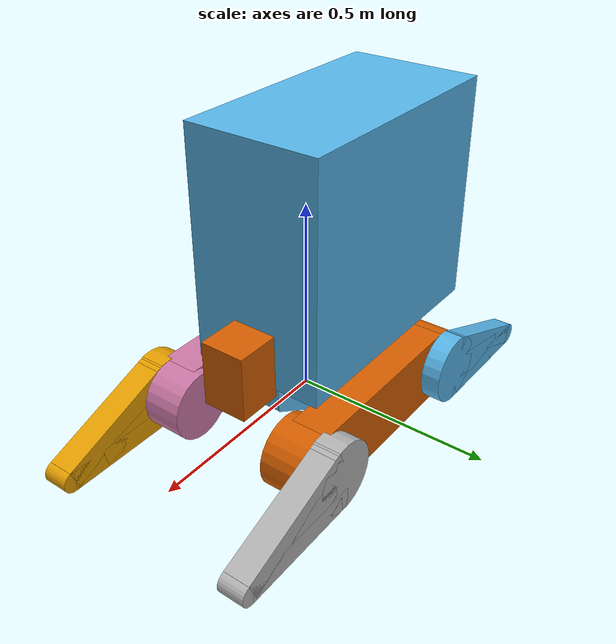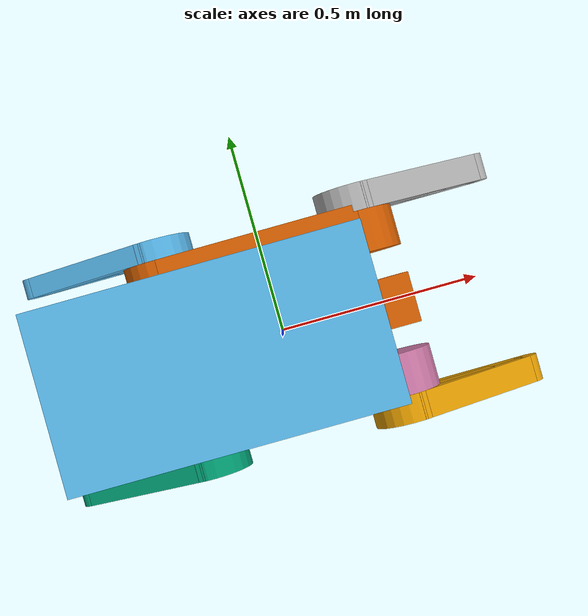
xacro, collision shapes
<?xml version="1.0"?>
<robot xmlns:xacro="http://www.ros.org/wiki/xacro" name="NIFTi">

    <!-- ARGUMENTS FOR DETERMINING REMOVABLE ROBOT PARTS PRESENCE AND POSITION ON THE BODY. -->
    <xacro:arg name="has_top_box" default="1" />
        <!-- Distance from robot's back to top box' front panel. Default is the front-most position. -->
        <xacro:arg name="top_box_j_x" default="0.4977" />

    <xacro:arg name="has_omnicam" default="1" />

    <xacro:arg name="has_flippers" default="1" />

    <xacro:arg name="simplified_collision" default="2" />

    <xacro:arg name="big_collision_box_on_top" default="1" />
    <xacro:arg name="flipper_inflation_ratio" default="1.0" />
    <!-- Since laser does a really bad job in filtering the flippers out, we need to extend them a bit inwards. The outer outline of the flippers should still remain realistic. -->
    <xacro:arg name="flipper_inward_enlargement" default="0.017" />

    <xacro:arg name="has_jaco_arm" default="0" />
	<xacro:arg name="jaco_uses_wpi" default="0" />
	<xacro:arg name="jaco_uses_kinova_ros" default="0" />
	<xacro:arg name="jaco_arm_is_v1" default="1" />
        <!-- Origin is the bottom-most (z) and central (x-y) part of the cylinder with connectors. -->
        <xacro:arg name="jaco_x_offset" default="0.449" />
        <xacro:arg name="jaco_y_offset" default="0.1765" />

        <xacro:arg name="holds_stick" default="0" />
            <xacro:arg name="stick_length" default="0.2" />
	    <xacro:arg name="stick_visible" default="1" />

    <xacro:arg name="has_flipper_touch_sensors" default="0" />

    <xacro:arg name="has_axis_camera" default="0" />
        <xacro:arg name="axis_x_offset" default="0.059" />
	<xacro:arg name="axis_y_offset" default="0.08" />

    <xacro:arg name="has_realsense" default="0" />
        <xacro:arg name="realsense_tilt" default="0.5" />
        <xacro:arg name="realsense_shift_y" default="0.05" />
        <xacro:arg name="realsense_upside_down" default="0" />

    <!-- Parameters for the Xtion-Thermo cam sensor mounted on a ptu. -->
    <xacro:arg name="has_ptuxthermo" default="0" />
    <xacro:arg name="ptuxthermo_x_offset" default="0.449" />
    <xacro:arg name="ptuxthermo_y_offset" default="0.1765" />

    <!-- ARGUMENTS FOR GENERATING FIXED ROBOT MODEL -->
    <xacro:arg name="robot_fixed" default="0" />
    <xacro:arg name="left_track_angle" default="0.0" />
    <xacro:arg name="right_track_angle" default="0.0" />
    <xacro:arg name="front_left_flipper_angle" default="0.0" />
    <xacro:arg name="front_right_flipper_angle" default="0.0" />
    <xacro:arg name="rear_left_flipper_angle" default="0.0" />
    <xacro:arg name="rear_right_flipper_angle" default="0.0" />
    <xacro:arg name="laser_angle" default="0.0" />

    <!-- ARGUMENTS FOR SAFE EXPLORATION -->
    <xacro:arg name="base_link_cog_offset" default="0.0" />

    <!-- MEASURED CONSTANTS -->

    <xacro:property name="body_scale" value="1.0" />
    <xacro:property name="body_mass" value="6.746" />

    <xacro:property name="battery_scale" value="1.0" />
    <xacro:property name="battery_mass" value="3.18" />

    <xacro:property name="top_box_scale" value="1.0" />
    <xacro:property name="top_box_mass" value="0.24" />

    <xacro:property name="antenna_scale" value="1.0" />
    <xacro:property name="antenna_mass" value="0.56" />

    <xacro:property name="track_scale" value="1.0" />
    <xacro:property name="track_mass" value="6.06" />
    <!-- Since laser does a really bad job in filtering the front track parts out, we need to extend them a bit inwards. The outer outline of the tracks should still remain realistic. -->
    <xacro:property name="track_inward_enlargement" value="0.015" />

    <xacro:property name="flipper_scale" value="1.0" />
    <xacro:property name="flipper_mass" value="0.75" />

    <xacro:property name="laser_scale" value="1.0" />
    <xacro:property name="laser_mass" value="1.1" />

    <xacro:property name="omnicam_scale" value="1.0" />
    <xacro:property name="omnicam_mass" value="2.414" />

    <!-- SPECIAL LINKS -->

    <!-- This is a virtual link that specifies the origin to which parts attachable to the top of the robot should be related. -->
    <link name="rear_right_box" />
    <joint name="rear_right_box_j" type="fixed">
        <parent link="base_link"/>
        <child link="rear_right_box"/>
        <origin rpy="0 0 0" xyz="-0.379 -0.1265 0.185"/>
    </joint>

    <!-- INCLUDES -->
    <!-- The included models should have collision elements specified for all physical links to be filtered out by laser filtering. -->

    <!-- Include Jaco arm if enabled. -->
    <xacro:if value="$(arg has_jaco_arm)">
	<xacro:if value="$(arg jaco_uses_wpi)">
        	<xacro:include filename="$(find jaco_description)/urdf/jaco_arm.urdf.xacro" />
        	<xacro:jaco_arm parent="jaco_base_helper" xyz="0 0 0" rpy="0 0 0" />
	</xacro:if>
	<xacro:if value="$(arg jaco_uses_kinova_ros)"><!-- For Kinova-ROS -->
		<xacro:property name="robot_root" value="jaco_base_helper" />
		<xacro:if value="$(arg jaco_arm_is_v1)">
			<xacro:include filename="$(find kinova_description)/urdf/j2n6s300.xacro"/>
			<xacro:j2n6s300 base_parent="jaco_base_helper" simplified_collision="$(arg simplified_collision)"/>
		</xacro:if>
		<xacro:unless value="$(arg jaco_arm_is_v1)">
		    	<xacro:include filename="$(find kinova_description)/urdf/j2n6s300.xacro"/>
		    	<xacro:j2n6s300 base_parent="jaco_base_helper" simplified_collision="$(arg simplified_collision)"/>
		</xacro:unless>
	</xacro:if>
	<xacro:unless value="$(arg jaco_uses_kinova_ros)">
		<xacro:unless value="$(arg jaco_uses_wpi)">
		        <xacro:include filename="$(find jaco_model)/urdf/jaco_arm.xacro" />
	        	<xacro:jaco_arm parent="jaco_base_helper"/>
		</xacro:unless>
	</xacro:unless>
        <link name="jaco_base_helper" /> <!-- this link only exists to allow for an offset between jaco_link_base and rear_right_box -->
        <joint name="jaco_base_to_robot_base_link" type="fixed">
             <parent link="rear_right_box" />
             <child link="jaco_base_helper" />
             <origin xyz="$(arg jaco_x_offset) $(arg jaco_y_offset) 0.015" rpy="0 0 1.5707963267" />
        </joint>
	<xacro:if value="$(arg holds_stick)">
		<xacro:property name="stick_length" value="$(arg stick_length)" />
		<link name="arm_stick">
			<xacro:if value="$(arg stick_visible)">
			<visual>
				<origin xyz="0 0 ${stick_length/2.0}" rpy="0 0 0" />
				<geometry>
					<cylinder length="$(arg stick_length)" radius="0.01" />
				</geometry>
			</visual>
			</xacro:if>
			<collision>
				<origin xyz="0 0 ${stick_length/2.0}" rpy="0 0 0" />
				<geometry>
					<cylinder length="$(arg stick_length)" radius="0.04" />
				</geometry>
			</collision>

		</link>
		<joint name="arm_stick_joint" type="fixed">

			<xacro:unless value="$(arg jaco_uses_wpi)">
				<parent link="jaco_end_effector" />
			</xacro:unless>

			<xacro:if value="$(arg jaco_uses_wpi)">
				<parent link="jaco_link_hand" />
			</xacro:if>
			<child link="arm_stick" />
			<origin xyz="0 0 0" rpy="0 0 0" />
		</joint>
		<link name="arm_stick_holder">
			<xacro:if value="$(arg stick_visible)">
			<visual>
				<geometry>
					<sphere radius="0.08" />
				</geometry>
			</visual>
			</xacro:if>
			<collision>
				<geometry>
					<sphere radius="0.25" />
				</geometry>
			</collision>

		</link>
		<joint name="arm_stick_holder_joint" type="fixed">
			<xacro:unless value="$(arg jaco_uses_wpi)">
				<parent link="jaco_end_effector" />
			</xacro:unless>

			<xacro:if value="$(arg jaco_uses_wpi)">
				<parent link="jaco_link_hand" />
			</xacro:if>

			<child link="arm_stick_holder" />
			<origin xyz="0 0 0" rpy="0 0 0" />
		</joint>
	</xacro:if>
    </xacro:if>

    <xacro:if value="$(arg has_flipper_touch_sensors)">
        <xacro:include filename="$(find flipper_touch_driver)/urdf/flipper_touch_sensors.xacro" />
    </xacro:if>

    <!-- Include Axis camera if enabled -->
    <xacro:if value="$(arg has_axis_camera)">
        <xacro:include filename="$(find axis_camera_tradr)/urdf/axis_camera_with_holder.xacro" />
        <joint name="rear_right_box_to_axis_holder" type="fixed">
            <parent link="rear_right_box" />
            <child link="axis_tradr_holder" />
            <origin xyz="$(arg axis_x_offset) $(arg axis_y_offset) 0" rpy="0 0 -1.5708" />
	</joint>
    </xacro:if>

    <!-- Include PTU Xtion-Thermo Sensor if enabled -->
    <xacro:if value="$(arg has_ptuxthermo)">
        <xacro:include filename="$(find flir_ptu)/urdf/ptu_xthermo.urdf.xacro" />
        <xacro:ptu_xthermo/>
        <joint name="rear_right_box_to_ptu_holder_base" type="fixed">
            <parent link="rear_right_box" />
            <child link="ptu_holder_base_link" />
            <origin xyz="$(arg ptuxthermo_x_offset) $(arg ptuxthermo_y_offset) 0" rpy="0 0 0" />
        </joint>
    </xacro:if>

    <!-- Include Realsense if enabled -->
    <xacro:if value="$(arg has_realsense)">
        <xacro:include filename="$(find realsense_media)/urdf/realsense_r200_with_holder.xacro" />
	<xacro:realsense_r200_with_holder camera_name="camera" tilt="$(arg realsense_tilt)" sensor_shift_y="$(arg realsense_shift_y)" upside_down="$(arg realsense_upside_down)" />
        <joint name="realsense_holder_part1_j" type="fixed">
            <parent link="omnicam"/>
    	    <child link="realsense_holder_part1"/>
 	    <origin xyz="0.05 0.04 0.075" rpy="0 0 0.628318530"/>
        </joint>
    </xacro:if>

    <!-- MACRO SPECIFICATIONS -->

    <xacro:macro name="inertia_meshlab" params="ixx ixy ixz iyy iyz izz scale mass">
        <inertia
            ixx="${ixx*scale*scale}" ixy="${ixy*scale*scale}" ixz="${ixz*scale*scale}"
            iyy="${iyy*scale*scale}" iyz="${iyz*scale*scale}"
            izz="${izz*scale*scale}"/>
    </xacro:macro>

    <xacro:macro name="default_inertial">
        <inertial>
            <origin xyz="0 0 0" rpy="0 0 0"/>
            <mass value="1e-5" />
            <inertia ixx="1e-3" ixy="1e-6" ixz="1e-6"
                iyy="1e-3" iyz="1e-6"
                izz="1e-3" />
        </inertial>
    </xacro:macro>

    <xacro:macro name="fixed_joint" params="name parent child xyz rpy">
        <joint name="${name}" type="fixed">
            <parent link="${parent}"/>
            <child link="${child}"/>
            <origin xyz="${xyz}" rpy="${rpy}"/>
        </joint>
    </xacro:macro>

    <xacro:macro name="empty_link" params="name">
        <link name="${name}">
            <visual>
                <origin xyz="0 0 0" rpy="0 0 0" />
                <geometry>
                    <box size="0.05 0.05 0.05"/>
                </geometry>
                <material name="invisible_color">
                    <color rgba="1 0 0 0.5"/>
                </material>
            </visual>
            <xacro:default_inertial />
        </link>
    </xacro:macro>

    <!-- NIFTI ROBOT LINKS AND JOINTS SPECIFICATION -->

    <link name="base_link">
        <visual>
            <origin xyz="0 0 0" rpy="0 0 0" />
            <geometry>
                <mesh scale="${body_scale} ${body_scale} ${body_scale}"
                    filename="package://nifti_robot_description/meshes/body.dae"/>
            </geometry>
        </visual>
        <xacro:if value="${$(arg simplified_collision)==0}">
            <collision>
                <origin xyz="0 0 0" rpy="0 0 0" />
                <geometry>
                    <mesh scale="${body_scale} ${body_scale} ${body_scale}"
                        filename="package://nifti_robot_description/meshes/body.dae"/>
                </geometry>
            </collision>
        </xacro:if>
        <xacro:if value="${$(arg simplified_collision)==1}">
            <collision>
                <origin xyz="0 0 0" rpy="0 0 0" />
                <geometry>
                    <mesh scale="${body_scale} ${body_scale} ${body_scale}"
                        filename="package://nifti_robot_description/meshes/collide/body.dae"/>
                </geometry>
            </collision>
        </xacro:if>
        <xacro:if value="${$(arg simplified_collision)==2}">
            <collision>
              <origin rpy="0 0 0" xyz="-0.1220 0 0.118"/>
              <geometry>
                <box size="0.50017 0.24093 0.1390" />
              </geometry>
            </collision>
            <collision>
              <origin rpy="0 0 0" xyz="0.157 0 0.118"/>
              <geometry>
                <box size="0.056 0.12093 0.1390" />
              </geometry>
            </collision>
            <collision>
              <origin rpy="0 0 0.785398" xyz="0.144 -0.076 0.118"/>
              <geometry>
                <box size="0.083 0.040 0.1390" />
              </geometry>
            </collision>
            <collision>
              <origin rpy="0 0 -0.785398" xyz="0.144 0.076 0.118"/>
              <geometry>
                <box size="0.083 0.040 0.1390" />
              </geometry>
            </collision>
            <collision>
              <origin rpy="0 0 0" xyz="0 0.135 0.09"/>
              <geometry>
                <box size="0.055 0.040 0.08" />
              </geometry>
            </collision>
            <collision>
              <origin rpy="0 0 0" xyz="0 0.155 0.013"/>
              <geometry>
                <box size="0.055 0.020 0.075" />
              </geometry>
            </collision>
            <collision>
              <origin rpy="0 0 0" xyz="0 -0.135 0.09"/>
              <geometry>
                <box size="0.055 0.040 0.08" />
              </geometry>
            </collision>
            <collision>
              <origin rpy="0 0 0" xyz="0 -0.155 0.013"/>
              <geometry>
                <box size="0.055 0.020 0.075" />
              </geometry>
            </collision>
        </xacro:if>
	<xacro:if value="$(arg big_collision_box_on_top)">
            <collision>
              <origin rpy="0 0 0" xyz="-0.13 0 0.418"/>
              <geometry>
                <box size="0.65 0.35 0.6" />
              </geometry>
	    </collision>
	</xacro:if>
	<inertial>
	    <xacro:property name="base_link_cog_offset" value="$(arg base_link_cog_offset)" />
            <origin xyz="${-0.034+base_link_cog_offset} 0 0.142" rpy="0 0 0"/>
            <mass value="${body_mass}"/>
            <xacro:inertia_meshlab
                ixx="6.9904e-003" ixy="1.2271e-004" ixz="-4.2725e-005"
                iyy="2.1290e-002" iyz="-1.0522e-004"
                izz="2.5519e-002"
                scale="${body_scale}" mass="${body_mass}" />
        </inertial>
    </link>

    <link name="battery">
        <visual>
            <origin xyz="0 0 0" rpy="0 0 0" />
            <geometry>
                <mesh scale="${battery_scale} ${battery_scale} ${battery_scale}"
                    filename="package://nifti_robot_description/meshes/battery.dae"/>
            </geometry>
        </visual>
        <xacro:if value="${$(arg simplified_collision)==0}">
            <collision>
                <origin xyz="0 0 0" rpy="0 0 0" />
                <geometry>
                    <mesh scale="${battery_scale} ${battery_scale} ${battery_scale}"
                        filename="package://nifti_robot_description/meshes/battery.dae"/>
                </geometry>
            </collision>
        </xacro:if>
        <xacro:if value="${$(arg simplified_collision)==1}">
            <collision>
                <origin xyz="0 0 0" rpy="0 0 0" />
                <geometry>
                    <mesh scale="${battery_scale} ${battery_scale} ${battery_scale}"
                        filename="package://nifti_robot_description/meshes/collide/battery.dae"/>
                </geometry>
            </collision>
        </xacro:if>
        <xacro:if value="${$(arg simplified_collision)==2}">
            <collision>
              <origin rpy="0 0 0" xyz="0 0 0.0410"/>
              <geometry>
                <box size="0.1450 0.1350 0.0820" />
              </geometry>
            </collision>
        </xacro:if>
        <inertial>
            <origin xyz="0 0 0.041" rpy="0 0 0"/>
            <mass value="${battery_mass}"/>
            <xacro:inertia_meshlab
                ixx="0.0020793" ixy="0" ixz="0"
                iyy="0.0023127" iyz="0"
                izz="0.0032712"
                scale="${battery_scale}" mass="${battery_mass}" />
        </inertial>
    </link>
    <xacro:fixed_joint name="battery_j" parent="base_link" child="battery" xyz="-0.2836 -0.0221 0.0722" rpy="0 0 0" />

    <xacro:if value="$(arg has_top_box)">
        <link name="top_box">
            <visual>
                <origin xyz="0 0 0" rpy="0 0 0" />
                <geometry>
                    <mesh scale="${top_box_scale} ${top_box_scale} ${top_box_scale}"
                        filename="package://nifti_robot_description/meshes/top_box.dae"/>
                </geometry>
            </visual>
            <xacro:if value="${$(arg simplified_collision)==0}">
                <collision>
                    <origin xyz="0 0 0" rpy="0 0 0" />
                    <geometry>
                        <mesh scale="${top_box_scale} ${top_box_scale} ${top_box_scale}"
                            filename="package://nifti_robot_description/meshes/top_box.dae"/>
                    </geometry>
                </collision>
            </xacro:if>
            <xacro:if value="${$(arg simplified_collision)==1}">
                <collision>
                    <origin xyz="0 0 0" rpy="0 0 0" />
                    <geometry>
                        <mesh scale="${top_box_scale} ${top_box_scale} ${top_box_scale}"
                            filename="package://nifti_robot_description/meshes/collide/top_box.dae"/>
                    </geometry>
                </collision>
            </xacro:if>
            <xacro:if value="${$(arg simplified_collision)==2}">
                <collision>
                  <origin rpy="0 0 0" xyz="-0.0290 0 0.0315"/>
                  <geometry>
                    <box size="0.2000 0.1330 0.06252" />
                  </geometry>
                </collision>
                <collision>
                  <origin rpy="0 0 0" xyz="-0.09824 0.04127 0.0690"/>
                  <geometry>
                    <box size="0.0440 0.0440 0.01303" />
                  </geometry>
                </collision>
                <collision>
                  <origin rpy="0 0 0" xyz="-0.07383 -0.04222 0.07996"/>
                  <geometry>
                    <box size="0.03732 0.03523 0.03489" />
                  </geometry>
                </collision>
            </xacro:if>
            <inertial>
                <origin xyz="0 0 0.041" rpy="0 0 0"/>
                <mass value="${top_box_mass}"/>
                <xacro:inertia_meshlab
                    ixx="0.0026136" ixy="0" ixz="0"
                    iyy="0.0049426" iyz="0"
                    izz="0.0070334"
                    scale="${top_box_scale}" mass="${top_box_mass}" />
            </inertial>
        </link>
        <joint name="top_box_j" type="fixed">
            <parent link="rear_right_box"/>
            <child link="top_box"/>
            <xacro:property name="top_box_j_x" value="$(arg top_box_j_x)" />
            <!-- Origin of top box is 0.071 m from the front side. And top_box_j_x is distance from robot's back to top box' front. -->
            <origin xyz="${top_box_j_x-0.071} 0.0708 0.0" rpy="0 0 0"/>
        </joint>
    </xacro:if>
    <link name="antenna">
        <visual>
            <origin xyz="0 0 0" rpy="0 0 0" />
            <geometry>
                <mesh scale="${antenna_scale} ${antenna_scale} ${antenna_scale}"
                    filename="package://nifti_robot_description/meshes/antenna.dae"/>
            </geometry>
        </visual>
        <xacro:if value="${$(arg simplified_collision)==0}">
            <collision>
                <origin xyz="0 0 0" rpy="0 0 0" />
                <geometry>
                    <mesh scale="${antenna_scale} ${antenna_scale} ${antenna_scale}"
                        filename="package://nifti_robot_description/meshes/antenna.dae"/>
                </geometry>
            </collision>
        </xacro:if>
        <xacro:if value="${$(arg simplified_collision)==1}">
            <collision>
                <origin xyz="0 0 0" rpy="0 0 0" />
                <geometry>
                    <mesh scale="${antenna_scale} ${antenna_scale} ${antenna_scale}"
                        filename="package://nifti_robot_description/meshes/collide/antenna.dae"/>
                </geometry>
            </collision>
        </xacro:if>
        <xacro:if value="${$(arg simplified_collision)==2}">
            <collision>
              <origin rpy="0 1.5707963267 0" xyz="-0.01864 0 0"/>
              <geometry>
                <cylinder length="0.03718" radius="0.008" />
              </geometry>
            </collision>
            <collision>
              <origin rpy="0 0 0" xyz="-0.030 0 0.19053"/>
              <geometry>
                <cylinder length="0.38107" radius="0.008" />
              </geometry>
            </collision>
        </xacro:if>
        <inertial>
            <origin xyz="-0.022 0.0203 0.02917" rpy="0 0 0"/>
            <mass value="${antenna_mass}"/>
            <xacro:inertia_meshlab
                ixx="4.8780e-003" ixy="-6.2341e-007" ixz="-7.4538e-007"
                iyy="9.0164e-004" iyz="-1.4394e-004"
                izz="4.2946e-003"
                scale="${antenna_scale}" mass="${antenna_mass}" />
        </inertial>
    </link>
    <xacro:fixed_joint name="antenna_j" parent="base_link" child="antenna" xyz="-0.3720 0.0789 0.1551" rpy="0 0 0" />

    <xacro:macro name="track" params="prefix reflect">
        <link name="${prefix}_track">
            <visual>
                <origin xyz="0 0 -0.0705" rpy="1.5707963267 0 ${reflect*1.5707963267}" />
                <geometry>
                    <mesh scale="${track_scale} ${track_scale} ${track_scale}"
                        filename="package://nifti_robot_description/meshes/bogie.dae"/>
                </geometry>
            </visual>
            <xacro:if value="${$(arg simplified_collision)==0}">
                <collision>
                    <origin xyz="0 0 -0.0705" rpy="1.5707963267 0 ${reflect*1.5707963267}" />
                    <geometry>
                        <mesh scale="${track_scale} ${track_scale} ${track_scale}"
                            filename="package://nifti_robot_description/meshes/bogie.dae"/>
                    </geometry>
                </collision>
            </xacro:if>
            <xacro:if value="${$(arg simplified_collision)==1}">
                <collision>
                    <origin xyz="0 0 -0.0705" rpy="1.5707963267 0 ${reflect*1.5707963267}" />
                    <geometry>
                        <mesh scale="${track_scale} ${track_scale} ${track_scale}"
                            filename="package://nifti_robot_description/meshes/collide/bogie.dae"/>
                    </geometry>
                </collision>
            </xacro:if>
            <xacro:if value="${$(arg simplified_collision)==2}">
                <collision>
                    <origin xyz="0 0 0.01855" rpy="1.5707963267 0 1.5707963267" />
                    <geometry>
                        <box size="0.09728 0.18094 0.50000"/>
                    </geometry>
                </collision>
                <collision>
                  <origin rpy="1.5707963267 0 0" xyz="0.25 ${-reflect*track_inward_enlargement} 0.01855"/>
                  <geometry>
                    <!-- enlarged because of laser filtering problems -->
                    <cylinder radius="0.09047" length="${0.09728+track_inward_enlargement}"/>
                  </geometry>
                </collision>
                <collision>
                  <origin rpy="1.5707963267 0 0" xyz="-0.25 0 0.01855"/>
                  <geometry>
                    <cylinder radius="0.09047" length="0.09728"/>
                  </geometry>
                </collision>
            </xacro:if>
            <inertial>
                <origin xyz="0 0 0.0141" rpy="0 0 0"/>
                <mass value="${track_mass}"/>
                <xacro:inertia_meshlab
                    ixx="0.002731" ixy="0" ixz="0"
                    iyy="0.032554" iyz="0.000015"
                    izz="0.031391"
                    scale="${track_scale}" mass="${track_mass}" />
            </inertial>
        </link>
        <joint name="${prefix}_track_j" type="revolute">
            <parent link="base_link"/>
            <child link="${prefix}_track"/>
            <axis xyz="0 1 0"/>

            <xacro:if value="${(reflect+1)/2}">
                <xacro:track_joint_properties track_fixed="$(arg robot_fixed)" track_angle="$(arg left_track_angle)" />
            </xacro:if>
            <xacro:unless value="${(reflect+1)/2}">
                <xacro:track_joint_properties track_fixed="$(arg robot_fixed)" track_angle="$(arg right_track_angle)" />
            </xacro:unless>
        </joint>
    </xacro:macro>

    <xacro:macro name="track_joint_properties" params="track_fixed track_angle">
        <origin xyz="0 ${reflect*0.1985} 0" rpy="0 ${track_angle} 0" />

        <xacro:unless value="${track_fixed}">
            <limit lower="0" upper="0" effort="0" velocity="4" />
        </xacro:unless>
        <xacro:if value="${track_fixed}">
            <limit lower="0" upper="0" effort="0" velocity="4" />
        </xacro:if>
    </xacro:macro>

    <xacro:track prefix="left" reflect="1" />
    <xacro:track prefix="right" reflect="-1" />

    <xacro:macro name="flipper" params="prefix1 prefix2 reflect_x reflect_y joint_pitch do_inward_enlargement">
        <link name="${prefix1}_${prefix2}_flipper">
            <visual>
                <origin xyz="0 0 0" rpy="3.32575 0 ${reflect_y*1.5707963267}" />
                <geometry>
                    <mesh scale="${flipper_scale} ${flipper_scale} ${flipper_scale}"
                        filename="package://nifti_robot_description/meshes/flipper.dae"/>
                </geometry>
            </visual>
            <xacro:if value="${$(arg simplified_collision)==0}">
                <collision name="${prefix1}_${prefix2}_flipper_collision">
                    <origin xyz="0 0 0" rpy="3.3 0 ${reflect_y*1.5707963267}" />
                    <geometry name="${prefix1}_${prefix2}_flipper_collision_geometry">
                        <mesh scale="${flipper_scale} ${flipper_scale} ${flipper_scale}"
                            filename="package://nifti_robot_description/meshes/flipper.dae"/>
                    </geometry>
                </collision>
            </xacro:if>
            <xacro:if value="${$(arg simplified_collision)==1}">
                <collision name="${prefix1}_${prefix2}_flipper_collision">
                    <origin xyz="0 0 0" rpy="3.3 0 ${reflect_y*1.5707963267}" />
                    <geometry name="${prefix1}_${prefix2}_flipper_collision_geometry">
                        <mesh scale="${flipper_scale} ${flipper_scale} ${flipper_scale}"
                            filename="package://nifti_robot_description/meshes/collide/flipper.dae"/>
                    </geometry>
                </collision>
            </xacro:if>
            <xacro:if value="${$(arg simplified_collision)==2}">
                <collision>
                  <origin rpy="1.5707963267 0 0" xyz="0 ${-reflect_y*$(arg flipper_inward_enlargement)*do_inward_enlargement/2.0} 0"/>
                  <geometry>
                    <cylinder length="${0.04981+$(arg flipper_inward_enlargement)*do_inward_enlargement}" radius="0.09047" />
                  </geometry>
                </collision>
                <collision>
                    <origin rpy="1.5707963267 0 0" xyz="${reflect_y*0.33} ${-reflect_y*$(arg flipper_inward_enlargement)*do_inward_enlargement/2.0} 0.0"/>
                  <geometry>
                    <cylinder length="${0.04981+$(arg flipper_inward_enlargement)*do_inward_enlargement}" radius="${0.029 + 0.029*($(arg flipper_inflation_ratio)-1)*do_inward_enlargement}" />
                  </geometry>
                </collision>
                <collision>
                    <origin rpy="0 0.184162095 ${(1-reflect_y)*1.5707963267}" xyz="${reflect_y*0.165} ${-reflect_y*$(arg flipper_inward_enlargement)*do_inward_enlargement/2.0} 0.0325"/>
                  <geometry>
                    <box size="0.33 ${0.04981+$(arg flipper_inward_enlargement)*do_inward_enlargement} ${0.055 + 0.055*($(arg flipper_inflation_ratio)-1)*do_inward_enlargement}" />
                  </geometry>
                </collision>
                <collision>
                    <origin rpy="0 -0.184162095 ${(1-reflect_y)*1.5707963267}" xyz="${reflect_y*0.165} ${-reflect_y*$(arg flipper_inward_enlargement)*do_inward_enlargement/2.0} -0.0325"/>
                  <geometry>
                    <box size="0.33 ${0.04981+$(arg flipper_inward_enlargement)*do_inward_enlargement} ${0.055 + 0.055*($(arg flipper_inflation_ratio)-1)*do_inward_enlargement}" />
                  </geometry>
                </collision>
                <collision>
                    <origin rpy="0 -0.02 ${(1-reflect_y)*1.5707963267}" xyz="${reflect_y*0.136} ${-reflect_y*$(arg flipper_inward_enlargement)*do_inward_enlargement/2.0} 0.004"/>
                  <geometry>
                    <box size="0.20 ${0.04981+$(arg flipper_inward_enlargement)*do_inward_enlargement} 0.07" />
                  </geometry>
                </collision>
            </xacro:if>
            <inertial>
                <origin xyz="${reflect_y*0.08} 0 0.0" rpy="0 0 0"/>
                <mass value="${flipper_mass}"/>
                <xacro:inertia_meshlab
                    ixx="1.7491e-003" ixy="2.8512e-007" ixz="1.8277e-003"
                    iyy="1.2277e-002" iyz="-3.6288e-007"
                    izz="1.0941e-002"
                    scale="${flipper_scale}" mass="${flipper_mass}" />
            </inertial>
            <sensor name="${prefix1}_${prefix2}_flipper_contact" type="contact">
                <contact>
                    <collision>${prefix1}_${prefix2}_flipper_collision</collision>
                    <collision>${prefix1}_${prefix2}_flipper_collision_large_wheel</collision>
                    <collision>${prefix1}_${prefix2}_flipper_collision_small_wheel</collision>
                    <collision>${prefix1}_${prefix2}_flipper_collision_top_bar</collision>
                    <collision>${prefix1}_${prefix2}_flipper_collision_bottom_bar</collision>
                    <collision>${prefix1}_${prefix2}_flipper_collision_middle_bar</collision>
                </contact>
            </sensor>
        </link>
        <xacro:if value="${(reflect_x+1)/2}">
            <xacro:if value="${(reflect_y+1)/2}">
                <xacro:flipper_joint flipper_fixed="$(arg robot_fixed)" flipper_angle="$(arg front_left_flipper_angle)" />
            </xacro:if>
            <xacro:unless value="${(reflect_y+1)/2}">
                <xacro:flipper_joint flipper_fixed="$(arg robot_fixed)" flipper_angle="$(arg front_right_flipper_angle)" />
            </xacro:unless>
        </xacro:if>
        <xacro:unless value="${(reflect_x+1)/2}">
            <xacro:if value="${(reflect_y+1)/2}">
                <xacro:flipper_joint flipper_fixed="$(arg robot_fixed)" flipper_angle="$(arg rear_left_flipper_angle)" />
            </xacro:if>
            <xacro:unless value="${(reflect_y+1)/2}">
                <xacro:flipper_joint flipper_fixed="$(arg robot_fixed)" flipper_angle="$(arg rear_right_flipper_angle)" />
            </xacro:unless>
        </xacro:unless>
    </xacro:macro>

    <xacro:macro name="flipper_joint" params="flipper_fixed flipper_angle">
        <xacro:if value="${flipper_fixed}">
            <joint name="${prefix1}_${prefix2}_flipper_j" type="revolute">
                <xacro:flipper_joint_inner flipper_fixed="${flipper_fixed}" flipper_angle="${flipper_angle}" />
            </joint>
        </xacro:if>
        <xacro:unless value="${flipper_fixed}">
            <joint name="${prefix1}_${prefix2}_flipper_j" type="continuous">
                <xacro:flipper_joint_inner flipper_fixed="${flipper_fixed}" flipper_angle="${flipper_angle}" />
            </joint>
        </xacro:unless>
    </xacro:macro>

    <xacro:macro name="flipper_joint_inner" params="flipper_fixed flipper_angle">
        <parent link="${prefix2}_track"/>
        <child link="${prefix1}_${prefix2}_flipper"/>
        <axis xyz="0 1 0"/>
        <origin xyz="${reflect_x*0.25} ${reflect_y*0.0735} 0.0195" rpy="0 ${joint_pitch+flipper_angle} 0"/>

        <xacro:if value="${flipper_fixed}">
            <limit lower="0" upper="0" effort="0" velocity="4" />
        </xacro:if>
    </xacro:macro>

    <xacro:if value="$(arg has_flippers)">
        <xacro:flipper prefix1="front" prefix2="left" reflect_x="1" reflect_y="1" joint_pitch="0.1937" do_inward_enlargement="1" />
        <xacro:flipper prefix1="front" prefix2="right" reflect_x="1" reflect_y="-1" joint_pitch="-2.9479" do_inward_enlargement="1" />
        <xacro:flipper prefix1="rear" prefix2="left" reflect_x="-1" reflect_y="1" joint_pitch="2.9479" do_inward_enlargement="0" />
        <xacro:flipper prefix1="rear" prefix2="right" reflect_x="-1" reflect_y="-1" joint_pitch="-0.1937" do_inward_enlargement="0" />

        <link name="front_left_flipper_end_point"/>
            <joint name="front_left_flipper_end_point_j" type="fixed">
            <parent link="front_left_flipper"/>
            <child link="front_left_flipper_end_point"/>
            <origin xyz="0.3476 0 0" rpy="0 0.1937 0"/>
        </joint>

        <link name="front_right_flipper_end_point"/>
        <joint name="front_right_flipper_end_point_j" type="fixed">
            <parent link="front_right_flipper"/>
            <child link="front_right_flipper_end_point"/>
            <origin xyz="0.3476 0 0" rpy="0 0.1937 0"/>
        </joint>
    </xacro:if>

    <link name="laser">
        <visual>
            <origin xyz="0 0 0" rpy="1.5707963267 0 -1.5707963267" />
            <geometry>
                <mesh scale="${laser_scale} ${laser_scale} ${laser_scale}"
                    filename="package://nifti_robot_description/meshes/laser.dae"/>
            </geometry>
        </visual>
        <xacro:if value="${$(arg simplified_collision)==0}">
            <collision>
                <origin xyz="0 0 0" rpy="1.5707963267 0 -1.5707963267" />
                <geometry>
                    <mesh scale="${laser_scale} ${laser_scale} ${laser_scale}"
                        filename="package://nifti_robot_description/meshes/laser.dae"/>
                </geometry>
            </collision>
        </xacro:if>
        <xacro:if value="${$(arg simplified_collision)==1}">
            <collision>
                <origin xyz="0 0 0" rpy="1.5707963267 0 -1.5707963267" />
                <geometry>
                    <mesh scale="${laser_scale} ${laser_scale} ${laser_scale}"
                        filename="package://nifti_robot_description/meshes/collide/laser.dae"/>
                </geometry>
            </collision>
        </xacro:if>
        <xacro:if value="${$(arg simplified_collision)==2}">
            <collision>
              <origin rpy="1.5707963267 0 -1.5707963267" xyz="0 0 -0.04"/>
              <geometry>
                <box size="0.1159 0.16826 0.1159"/>
              </geometry>
            </collision>
        </xacro:if>
        <inertial>
            <origin xyz="0 0 -0.07" rpy="0 0 0"/>
            <mass value="${laser_mass}"/>
            <xacro:inertia_meshlab
                ixx="3.1194e-003" ixy="-2.2210e-006" ixz="-1.1577e-006"
                iyy="3.1389e-003" iyz="-1.1530e-005"
                izz="1.7656e-003"
                scale="${laser_scale}" mass="${laser_mass}" />
        </inertial>
    </link>
    <joint name="laser_j" type="revolute">
        <parent link="base_link"/>
        <child link="laser"/>
        <axis xyz="1 0 0"/>
        <dynamics damping="10000000" />

        <xacro:property name="laser_angle" value="$(arg laser_angle)" />
        <origin xyz="0.2502 0.0 0.1407" rpy="${3.1415927+laser_angle} 0 0"/>

        <xacro:if value="$(arg robot_fixed)">
            <limit lower="0" upper="0" effort="0" velocity="4" />
        </xacro:if>
        <xacro:unless value="$(arg robot_fixed)">
            <limit lower="-2.3561945" upper="2.3561945" effort="0" velocity="4" />
        </xacro:unless>
    </joint>

    <!-- virtual link to specify IMU position -->
    <xacro:empty_link name="imu" />
    <xacro:fixed_joint name="imu_j" parent="base_link" child="imu" xyz="0 0 0.1500" rpy="3.141592 0 0" />

    <xacro:if value="$(arg has_omnicam)">
        <link name="omnicam">
            <visual>
                <origin xyz="0 0 0" rpy="0 0 0" />
                <geometry>
                    <mesh scale="${omnicam_scale} ${omnicam_scale} ${omnicam_scale}"
                        filename="package://nifti_robot_description/meshes/omnicam.dae"/>
                </geometry>
            </visual>
            <xacro:if value="${$(arg simplified_collision)==0}">
                <collision>
                    <origin xyz="0 0 0" rpy="0 0 0" />
                    <geometry>
                        <mesh scale="${omnicam_scale} ${omnicam_scale} ${omnicam_scale}"
                            filename="package://nifti_robot_description/meshes/omnicam.dae"/>
                    </geometry>
                </collision>
            </xacro:if>
            <xacro:if value="${$(arg simplified_collision)==1}">
                <collision>
                    <origin xyz="0 0 0" rpy="0 0 0" />
                    <geometry>
                        <mesh scale="${omnicam_scale} ${omnicam_scale} ${omnicam_scale}"
                            filename="package://nifti_robot_description/meshes/collide/omnicam.dae"/>
                    </geometry>
                </collision>
            </xacro:if>
            <xacro:if value="${$(arg simplified_collision)==2}">
                <collision>
                  <origin rpy="0 0 0" xyz="-0.003 -0.0015 0.003"/>
                  <geometry>
                      <cylinder length="0.137" radius="0.068" />
                  </geometry>
                </collision>
            </xacro:if>
            <inertial>
                <origin xyz="0 0 0" rpy="0 0 0"/>
                <mass value="${omnicam_mass}"/>
                <xacro:inertia_meshlab
                    ixx="2.3726e-003" ixy="-3.0562e-006" ixz="-2.3418e-006"
                    iyy="2.3716e-003" iyz="5.1202e-006"
                    izz="1.6667e-003"
                    scale="${omnicam_scale}" mass="${omnicam_mass}" />
            </inertial>
        </link>

        <xacro:fixed_joint name="omnicam_j" parent="top_box" child="omnicam" xyz="0.0023 -0.0017 0.1292" rpy="0 0 -0.628318530" />
    </xacro:if>

</robot>
